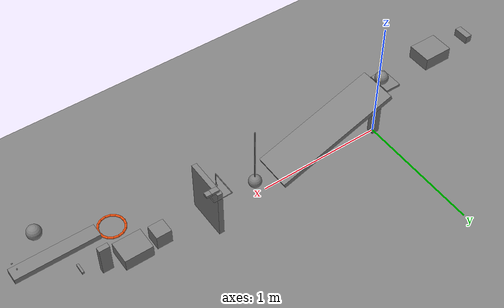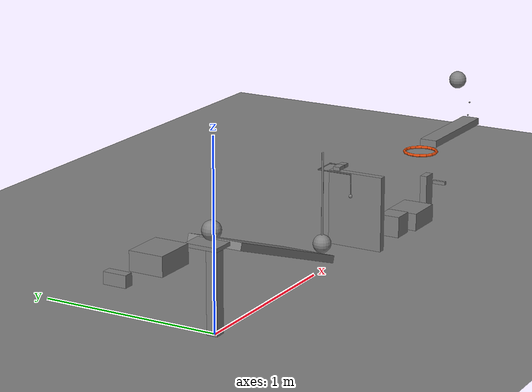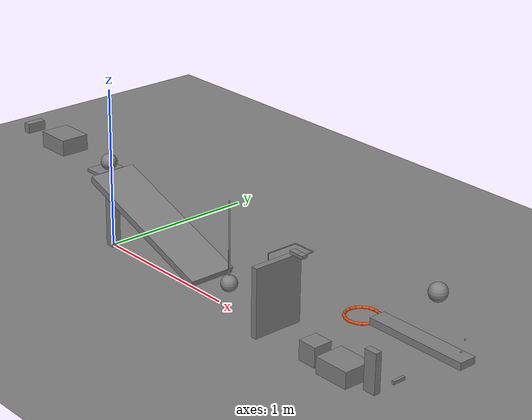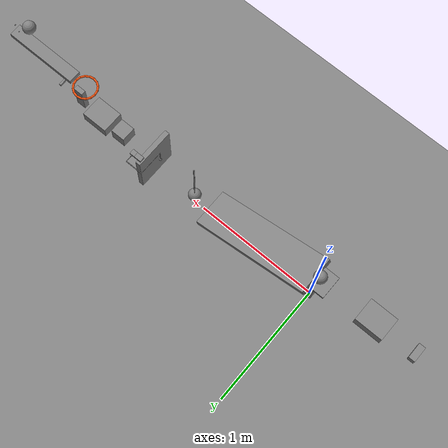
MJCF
<mujoco model="spring_and_gravity_cascade">
  <compiler angle="radian"/>
  <option timestep="0.002"/>
  <worldbody>
    <geom name="floor" type="plane" size="8 8 0.1" friction="0.68 0.005 0.002"/>
    <body name="ramp1">
      <geom name="ramp1_deck" type="box" pos="0.469847 0 0.302216" size="0.5 0.15 0.02" euler="0 0.349067 0" friction="0.68 0.005 0.002" solref="0.01 0.690107"/>
      <geom name="ramp1_leg" type="box" pos="0 0 0.236614" size="0.03 0.03 0.236614" friction="0.68 0.005 0.002" solref="0.01 0.690107"/>
    </body>
    <body name="ball1 starting shelf">
      <geom name="ball1 starting shelf" type="box" pos="-0.063941 0 0.479005" size="0.06 0.09 0.01" friction="0.68 0.005 0.002" solref="0.01 0.690107"/>
    </body>
    <body name="cart1 spring pusher" pos="-0.818941 0 0.539005">
      <joint name="pusher_track" type="slide" pos="0 0 0" axis="1 0 0" limited="true" range="0 0.5" stiffness="12" springref="0.8" damping="0.2"/>
      <geom name="cart1 spring pusher" type="box" pos="0 0 0" size="0.025 0.06 0.03" mass="0.1" friction="0.68 0.005 0.002" solref="0.01 0.690107"/>
    </body>
    <body name="cart1" pos="-0.483941 0 0.539005">
      <joint name="cart1_track" type="slide" pos="0 0 0" axis="1 0 0" limited="true" range="-0.2 0.32" stiffness="18" springref="0" damping="0.2"/>
      <geom name="cart1" type="box" pos="0 0 0" size="0.11 0.09 0.05" mass="0.5" friction="0.68 0.005 0.002" solref="0.01 0.690107"/>
    </body>
    <body name="ball1" pos="-0.023941 0 0.539005">
      <freejoint/>
      <geom name="ball1" type="sphere" pos="0 0 0" size="0.05" mass="0.2" condim="6" friction="0.68 0.005 0.002" solref="0.01 0.690107"/>
    </body>
    <body name="pendulum1" pos="1.08969 0 0.65">
      <joint name="pendulum1_hinge" type="hinge" pos="0 0 0" axis="0 1 0" limited="true" range="-0.872665 0" damping="0.04"/>
      <geom name="pendulum1" type="sphere" pos="0 0 -0.5" size="0.05" mass="0.3" friction="0.68 0.005 0.002" solref="0.01 0.690107"/>
      <geom name="pendulum rod" type="capsule" size="0.005" fromto="0 0 0 0 0 -0.45" mass="0.05" friction="0.68 0.005 0.002" solref="0.01 0.690107"/>
    </body>
    <body name="door1" pos="1.48109 -0.16 0.23">
      <joint name="door1_hinge" type="hinge" pos="0 0 0" axis="0 0 1" limited="true" range="-1.22173 0" stiffness="2.5" springref="-1.22173" damping="0.04"/>
      <geom name="door1" type="box" pos="0 0.16 0" size="0.02 0.16 0.21" mass="0.45" friction="0.68 0.005 0.002" solref="0.01 0.690107"/>
      <geom name="door latch tooth" type="box" pos="0.02 0.28 0.22" size="0.03 0.02 0.01" mass="0.005" friction="0.68 0.005 0.002" solref="0.01 0.690107"/>
    </body>
    <body name="door release latch" pos="1.55109 0.12 0.45">
      <joint name="door_release_track" type="slide" pos="0 0 0" axis="0 0 1" limited="true" range="0 0.06" damping="0.2"/>
      <geom name="door release latch" type="box" pos="0 0 0" size="0.02 0.02 0.01" mass="0.02" friction="0.68 0.005 0.002" solref="0.01 0.690107"/>
      <geom name="latch outer link" type="capsule" size="0.003" fromto="0 0 0 0 0.08 0" mass="0.003" friction="0.68 0.005 0.002" solref="0.01 0.690107"/>
      <geom name="latch overhead link" type="capsule" size="0.003" fromto="0 0.08 0 -0.14 0.08 0" mass="0.003" friction="0.68 0.005 0.002" solref="0.01 0.690107"/>
      <geom name="latch cross link" type="capsule" size="0.003" fromto="-0.14 0.08 0 -0.14 -0.12 0" mass="0.003" friction="0.68 0.005 0.002" solref="0.01 0.690107"/>
      <geom name="latch pickup link" type="capsule" size="0.003" fromto="-0.14 -0.12 0 -0.14 -0.12 -0.123022" mass="0.003" friction="0.68 0.005 0.002" solref="0.01 0.690107"/>
      <geom name="latch pickup" type="sphere" pos="-0.14 -0.12 -0.123022" size="0.01" mass="0.005" friction="0.68 0.005 0.002" solref="0.01 0.690107"/>
    </body>
    <body name="block1" pos="1.84663 -0.050553 0.06">
      <freejoint/>
      <geom name="block1" type="box" pos="0 0 0" size="0.06 0.06 0.06" mass="0.35" friction="0.68 0.005 0.002" solref="0.01 0.690107"/>
    </body>
    <body name="domino1" pos="2.26663 -0.050553 0.12">
      <freejoint/>
      <geom name="domino1" type="box" pos="0 0 0" size="0.04 0.02 0.12" mass="0.25" friction="0.68 0.005 0.002" solref="0.01 0.690107"/>
    </body>
    <body name="lever release latch" pos="2.44663 -0.050553 0.145385">
      <joint name="lever_release_track" type="slide" pos="0 0 0" axis="1 0 0" limited="true" range="0 0.12" damping="0.2"/>
      <geom name="lever release latch" type="box" pos="0 0 0" size="0.008 0.04 0.01" mass="0.02" friction="0.68 0.005 0.002" solref="0.01 0.690107"/>
    </body>
    <body name="lever1" pos="2.57931 -0.050553 0.425192">
      <joint name="lever1_hinge" type="hinge" pos="0 0 0" axis="0 1 0" limited="true" range="-1.8326 -1.0472" stiffness="2" springref="-1.8326" damping="0.04"/>
      <geom name="lever1" type="box" pos="0 0 0" size="0.3 0.05 0.02" mass="0.49" friction="0.68 0.005 0.002" solref="0.01 0.690107"/>
      <geom name="lever cradle support" type="sphere" pos="0.252372 0 0.0425" size="0.005" mass="0.005" friction="0.68 0.005 0.002" solref="0.01 0.690107"/>
      <geom name="lever cradle back" type="sphere" pos="0.272501 0 0.117636" size="0.005" mass="0.005" friction="0.68 0.005 0.002" solref="0.01 0.690107"/>
    </body>
    <body name="ball2" pos="2.66868 -0.050553 0.72">
      <freejoint/>
      <geom name="ball2" type="sphere" pos="0 0 0" size="0.05" mass="0.2" condim="6" friction="0.68 0.005 0.002" solref="0.01 0.690107"/>
    </body>
    <body name="ring1">
      <geom name="ring1_00" type="capsule" size="0.008" fromto="2.27131 -0.050553 0.4 2.2643 -0.0153461 0.4" friction="0.68 0.005 0.002" solref="0.01 0.690107" rgba="0.9 0.3 0.05 1"/>
      <geom name="ring1_01" type="capsule" size="0.008" fromto="2.2643 -0.0153461 0.4 2.24436 0.0145008 0.4" friction="0.68 0.005 0.002" solref="0.01 0.690107" rgba="0.9 0.3 0.05 1"/>
      <geom name="ring1_02" type="capsule" size="0.008" fromto="2.24436 0.0145008 0.4 2.21451 0.0344439 0.4" friction="0.68 0.005 0.002" solref="0.01 0.690107" rgba="0.9 0.3 0.05 1"/>
      <geom name="ring1_03" type="capsule" size="0.008" fromto="2.21451 0.0344439 0.4 2.17931 0.041447 0.4" friction="0.68 0.005 0.002" solref="0.01 0.690107" rgba="0.9 0.3 0.05 1"/>
      <geom name="ring1_04" type="capsule" size="0.008" fromto="2.17931 0.041447 0.4 2.1441 0.0344439 0.4" friction="0.68 0.005 0.002" solref="0.01 0.690107" rgba="0.9 0.3 0.05 1"/>
      <geom name="ring1_05" type="capsule" size="0.008" fromto="2.1441 0.0344439 0.4 2.11425 0.0145008 0.4" friction="0.68 0.005 0.002" solref="0.01 0.690107" rgba="0.9 0.3 0.05 1"/>
      <geom name="ring1_06" type="capsule" size="0.008" fromto="2.11425 0.0145008 0.4 2.09431 -0.0153461 0.4" friction="0.68 0.005 0.002" solref="0.01 0.690107" rgba="0.9 0.3 0.05 1"/>
      <geom name="ring1_07" type="capsule" size="0.008" fromto="2.09431 -0.0153461 0.4 2.08731 -0.050553 0.4" friction="0.68 0.005 0.002" solref="0.01 0.690107" rgba="0.9 0.3 0.05 1"/>
      <geom name="ring1_08" type="capsule" size="0.008" fromto="2.08731 -0.050553 0.4 2.09431 -0.0857599 0.4" friction="0.68 0.005 0.002" solref="0.01 0.690107" rgba="0.9 0.3 0.05 1"/>
      <geom name="ring1_09" type="capsule" size="0.008" fromto="2.09431 -0.0857599 0.4 2.11425 -0.115607 0.4" friction="0.68 0.005 0.002" solref="0.01 0.690107" rgba="0.9 0.3 0.05 1"/>
      <geom name="ring1_10" type="capsule" size="0.008" fromto="2.11425 -0.115607 0.4 2.1441 -0.13555 0.4" friction="0.68 0.005 0.002" solref="0.01 0.690107" rgba="0.9 0.3 0.05 1"/>
      <geom name="ring1_11" type="capsule" size="0.008" fromto="2.1441 -0.13555 0.4 2.17931 -0.142553 0.4" friction="0.68 0.005 0.002" solref="0.01 0.690107" rgba="0.9 0.3 0.05 1"/>
      <geom name="ring1_12" type="capsule" size="0.008" fromto="2.17931 -0.142553 0.4 2.21451 -0.13555 0.4" friction="0.68 0.005 0.002" solref="0.01 0.690107" rgba="0.9 0.3 0.05 1"/>
      <geom name="ring1_13" type="capsule" size="0.008" fromto="2.21451 -0.13555 0.4 2.24436 -0.115607 0.4" friction="0.68 0.005 0.002" solref="0.01 0.690107" rgba="0.9 0.3 0.05 1"/>
      <geom name="ring1_14" type="capsule" size="0.008" fromto="2.24436 -0.115607 0.4 2.2643 -0.0857599 0.4" friction="0.68 0.005 0.002" solref="0.01 0.690107" rgba="0.9 0.3 0.05 1"/>
      <geom name="ring1_15" type="capsule" size="0.008" fromto="2.2643 -0.0857599 0.4 2.27131 -0.050553 0.4" friction="0.68 0.005 0.002" solref="0.01 0.690107" rgba="0.9 0.3 0.05 1"/>
    </body>
    <body name="cart2" pos="2.05931 -0.050553 0.05">
      <joint name="cart2_track" type="slide" pos="0 0 0" axis="1 0 0" limited="true" range="-0.5 0" damping="0.2"/>
      <geom name="cart2" type="box" pos="0 0 0" size="0.11 0.09 0.05" mass="0.5" friction="0.68 0.005 0.002" solref="0.01 0.690107"/>
    </body>
  </worldbody>
  <keyframe>
    <key name="start" qpos="0 -0.2 -0.023941 0 0.539005 1 0 0 0 0 0 0 1.84663 -0.050553 0.06 1 0 0 0 2.26663 -0.050553 0.12 1 0 0 0 0 -1.0472 2.66868 -0.050553 0.72 1 0 0 0 0" qvel="0 0 0 0 0 0 0 0 0 0 0 0 0 0 0 0 0 0 0 0 0 0 0 0 0 0 0 0 0 0 0 0"/>
  </keyframe>
</mujoco>
